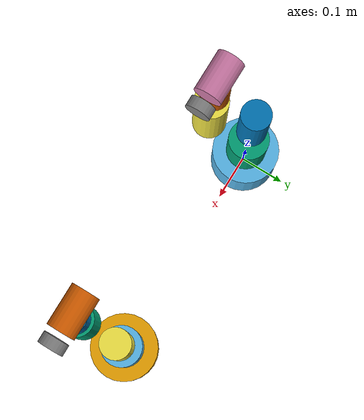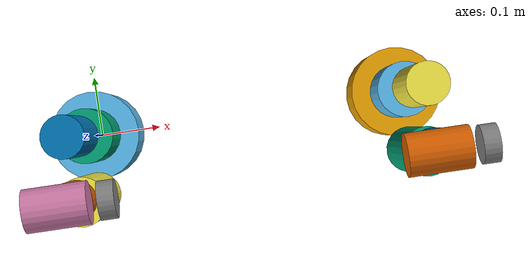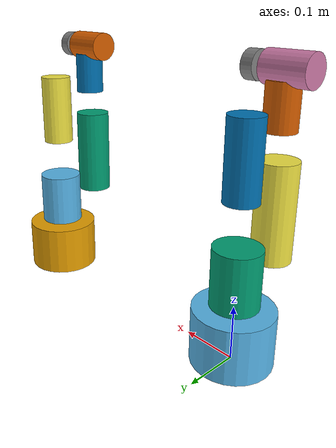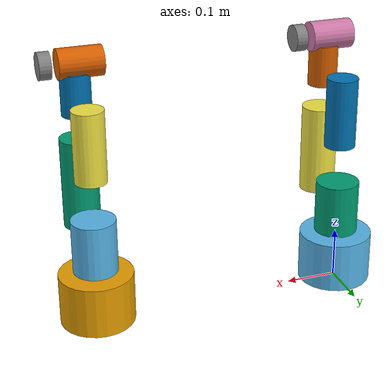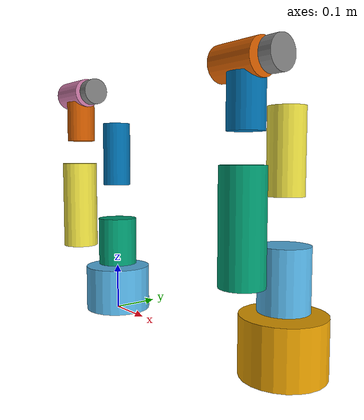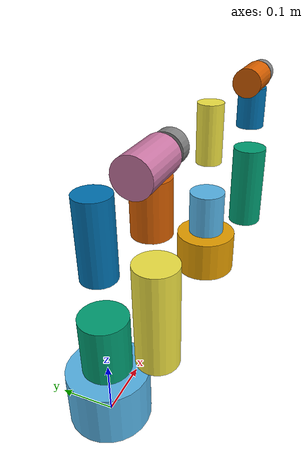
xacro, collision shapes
<?xml version="1.0"?>
<robot xmlns:xacro="http://www.ros.org/wiki/xacro" name="dual_arm_robot">

  <xacro:include filename="$(find mycobot_320_moveit)/urdf/mycobot_320.urdf.xacro" />

  <xacro:property name="width" value=".2" />

  <link name="world" />
  <xacro:define_arm parent="world" prefix="arm_a" base_xyz="0 0 0" base_rpy="0 0 0" />
  <xacro:define_arm parent="world" prefix="arm_b" base_xyz="0.5 0 0" base_rpy="0 0 0" />

  <gazebo>
    <plugin name="gazebo_ros_control" filename="libgazebo_ros_control.so" />
  </gazebo>

<plugin name="arm_a_joint_state_publisher" filename="libgazebo_ros_joint_state_publisher.so">
  <robotNamespace>/arm_a</robotNamespace>
  <jointName>arm_a_arm_joint_0, arm_a_arm_joint_1, arm_a_arm_joint_2, arm_a_arm_joint_3, arm_a_arm_joint_4, arm_a_arm_joint_5</jointName>
</plugin>
<plugin name="arm_b_joint_state_publisher" filename="libgazebo_ros_joint_state_publisher.so">
  <robotNamespace>/arm_b</robotNamespace>
  <jointName>arm_b_arm_joint_0, arm_b_arm_joint_1, arm_b_arm_joint_2, arm_b_arm_joint_3, arm_b_arm_joint_4, arm_b_arm_joint_5</jointName>
</plugin>

</robot>

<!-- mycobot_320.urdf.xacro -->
<robot xmlns:xacro="http://www.ros.org/wiki/xacro" name="mycobot_pro">

  <xacro:property name="width" value=".2" />

  <xacro:macro name="define_arm" params="parent prefix base_xyz base_rpy">
    <joint name="${prefix}_world2base" type="fixed">
      <parent link="${parent}" />
      <child link="${prefix}_base_link" />
      <origin xyz="${base_xyz}" rpy="${base_rpy}" />
    </joint>

    <link name="${prefix}_base_link">
      <visual>
        <geometry>
          <mesh filename="package://mycobot_320_moveit/urdf/320_urdf/base.dae" />
        </geometry>
        <origin xyz="0 0 0 " rpy=" 0 0 3.1415926" />
      </visual>
      <collision>
        <origin xyz="0 0 0.05 " rpy=" 0 0 3.1415926" />
        <geometry>
          <cylinder length="0.100" radius="0.0725" />
        </geometry>
      </collision>
      <inertial>
        <mass value="1.0" />
        <inertia ixx="0.00218" iyy="0.00218" izz="0.00263" ixy="0.0" ixz="0.0" iyz="0.0" />
      </inertial>
    </link>

    <link name="${prefix}_link1">
      <visual>
        <geometry>
          <mesh filename="package://mycobot_320_moveit/urdf/320_urdf/link1_1.dae" />
        </geometry>
        <origin xyz="0 0 0 " rpy=" 0 0 0" />
      </visual>
      <collision>
        <origin xyz="0 0 -0.02 " rpy=" 0 0 0" />
        <geometry>
          <cylinder length="0.106" radius="0.043" />
        </geometry>
      </collision>
      <inertial>
        <mass value="0.5" />
        <inertia ixx="0.00070" iyy="0.00070" izz="0.00046" ixy="0.0" ixz="0.0" iyz="0.0" />
      </inertial>
    </link>

    <link name="${prefix}_link2">
      <visual>
        <geometry>
          <mesh filename="package://mycobot_320_moveit/urdf/320_urdf/link2.dae" />
        </geometry>
        <origin xyz="0 0 0.0587 " rpy=" 0 0 3.1415926" />
      </visual>
      <collision>
        <origin xyz="0.07 0 0.095 " rpy="0 -1.5708 0" />
        <geometry>
          <cylinder length="0.18" radius="0.036" />
        </geometry>
      </collision>
      <inertial>
        <mass value="0.7" />
        <inertia ixx="0.00212" iyy="0.00212" izz="0.00045" ixy="0.0" ixz="0.0" iyz="0.0" />
      </inertial>
    </link>

    <link name="${prefix}_link3">
      <visual>
        <geometry>
          <mesh filename="package://mycobot_320_moveit/urdf/320_urdf/link3.dae" />
        </geometry>
        <origin xyz="0 0 0.038 " rpy=" 0 0 3.1415926" />
      </visual>
      <collision>
        <origin xyz="0.044 0 0 " rpy=" 0 -1.5708 0" />
        <geometry>
          <cylinder length="0.14" radius="0.0305" />
        </geometry>
      </collision>
      <inertial>
        <mass value="0.5" />
        <inertia ixx="0.00093" iyy="0.00093" izz="0.00023" ixy="0.0" ixz="0.0" iyz="0.0" />
      </inertial>
    </link>

    <link name="${prefix}_link4">
      <visual>
        <geometry>
          <mesh filename="package://mycobot_320_moveit/urdf/320_urdf/link4.dae" />
        </geometry>
        <origin xyz="0 -0.001 0 " rpy=" 0 0 0" />
      </visual>
      <collision>
        <origin xyz="0.0 -0.014 0 " rpy=" 0 -1.5708 1.5708" />
        <geometry>
          <cylinder length="0.083" radius="0.029" />
        </geometry>
      </collision>
      <inertial>
        <mass value="0.2" />
        <inertia ixx="0.00016" iyy="0.00016" izz="0.00008" ixy="0.0" ixz="0.0" iyz="0.0" />
      </inertial>
    </link>

    <link name="${prefix}_link5">
      <visual>
        <geometry>
          <mesh filename="package://mycobot_320_moveit/urdf/320_urdf/link5.dae" />
        </geometry>
        <origin xyz="0 0.002  0 " rpy=" 0  0 3.1415926" />
      </visual>
      <collision>
        <origin xyz="0 -0.01 0 " rpy=" 1.5708 1.5708 0" />
        <geometry>
          <cylinder length="0.0849" radius="0.029" />
        </geometry>
      </collision>
      <inertial>
        <mass value="0.2" />
        <inertia ixx="0.00016" iyy="0.00016" izz="0.00008" ixy="0.0" ixz="0.0" iyz="0.0" />
      </inertial>
    </link>

    <link name="${prefix}_link6">
      <visual>
        <geometry>
          <mesh filename="package://mycobot_320_moveit/urdf/320_urdf/link6.dae" />
        </geometry>
        <material name="grey">
          <color rgba="0.5 0.5 0.5 1" />
        </material>
        <origin xyz="-0.502 -0.090 -0.096 " rpy=" 0 1.5708 0" />
      </visual>
      <collision>
        <origin xyz="0.0 0 -0.01 " rpy=" 0 0 0" />
        <geometry>
          <cylinder length="0.0225" radius="0.026" />
        </geometry>
      </collision>
      <inertial>
        <mass value="0.2" />
        <inertia ixx="0.00002" iyy="0.00002" izz="0.00003" ixy="0.0" ixz="0.0" iyz="0.0" />
      </inertial>
    </link>

    <joint name="${prefix}_arm_joint_0" type="revolute">
      <axis xyz="0 0 1" />
      <limit effort="100.0" lower="-3.14" upper="3.14159" velocity="5" />
      <parent link="${prefix}_base_link" />
      <child link="${prefix}_link1" />
      <origin xyz="0 0 0.17846" rpy="0 0 0" />
    </joint>

    <joint name="${prefix}_arm_joint_1" type="revolute">
      <axis xyz="0 0 1" />
      <limit effort="100.0" lower="-3.14" upper="3.14159" velocity="5" />
      <parent link="${prefix}_link1" />
      <child link="${prefix}_link2" />
      <origin xyz="0 0 0" rpy="0 -1.5708 1.5708" />
    </joint>

    <joint name="${prefix}_arm_joint_2" type="revolute">
      <axis xyz=" 0 0 1" />
      <limit effort="100.0" lower="-3.14" upper="3.14159" velocity="5" />
      <parent link="${prefix}_link2" />
      <child link="${prefix}_link3" />
      <origin xyz="0.13635 0 0   " rpy="0 0 0" />
    </joint>

    <joint name="${prefix}_arm_joint_3" type="revolute">
      <axis xyz=" 0 0 1" />
      <limit effort="100.0" lower="-3.14" upper="3.14159" velocity="5" />
      <parent link="${prefix}_link3" />
      <child link="${prefix}_link4" />
      <origin xyz="0.1 0 0.09 " rpy=" 0 0 1.57080" />
    </joint>

    <joint name="${prefix}_arm_joint_4" type="revolute">
      <axis xyz="0 0 1" />
      <limit effort="100.0" lower="-3.14" upper="3.14159" velocity="5" />
      <parent link="${prefix}_link4" />
      <child link="${prefix}_link5" />
      <origin xyz="0 -0.07318 0" rpy="1.5708 -1.5708 0" />
    </joint>

    <joint name="${prefix}_arm_joint_5" type="revolute">
      <axis xyz="0 0 1" />
      <limit effort="100.0" lower="-3.14" upper="3.14159" velocity="5" />
      <parent link="${prefix}_link5" />
      <child link="${prefix}_link6" />
      <origin xyz="0.00 0.06635 0" rpy="-1.5708 0 0" />
    </joint>

    <xacro:macro name="transmission_macro" params="part index">
      <transmission name="${part}_tran_${index}">
        <type>transmission_interface/SimpleTransmission</type>
        <joint name="${part}_joint_${index}">
          <hardwareInterface>hardware_interface/PositionJointInterface</hardwareInterface>
        </joint>
        <actuator name="${part}_motor_${index}">
          <hardwareInterface>PositionJointInterface</hardwareInterface>
          <mechanicalReduction>1</mechanicalReduction>
        </actuator>
      </transmission>
    </xacro:macro>

    <xacro:transmission_macro index="0" part="${prefix}_arm" />
    <xacro:transmission_macro index="1" part="${prefix}_arm" />
    <xacro:transmission_macro index="2" part="${prefix}_arm" />
    <xacro:transmission_macro index="3" part="${prefix}_arm" />
    <xacro:transmission_macro index="4" part="${prefix}_arm" />
    <xacro:transmission_macro index="5" part="${prefix}_arm" />

  </xacro:macro>

  <!-- plugin-\-> -->
  <!-- plugin-\-> -->
</robot>
